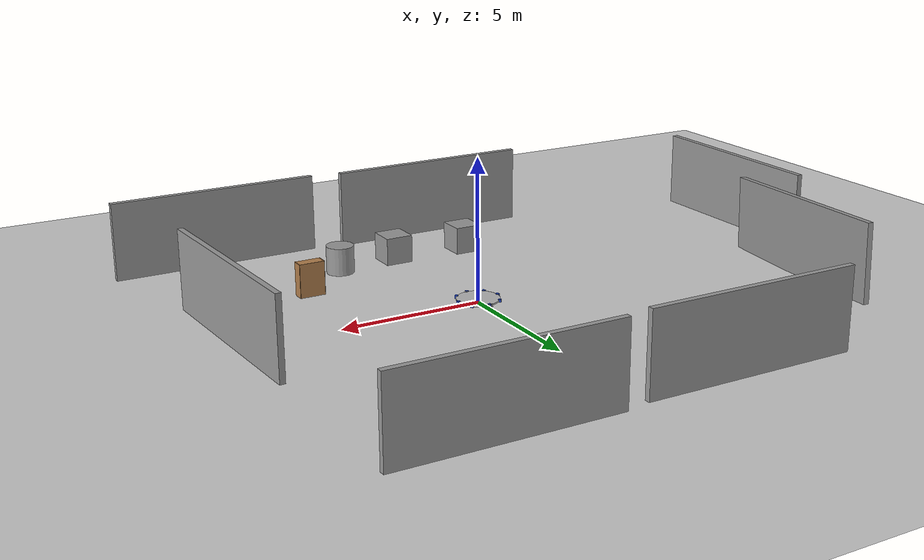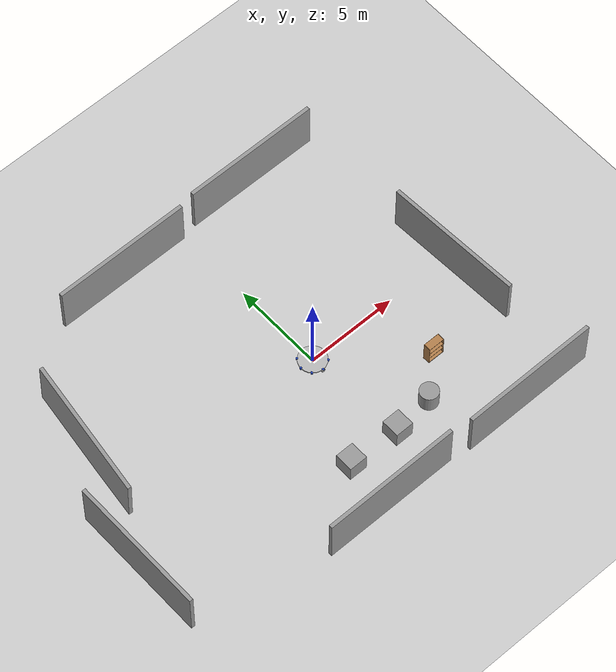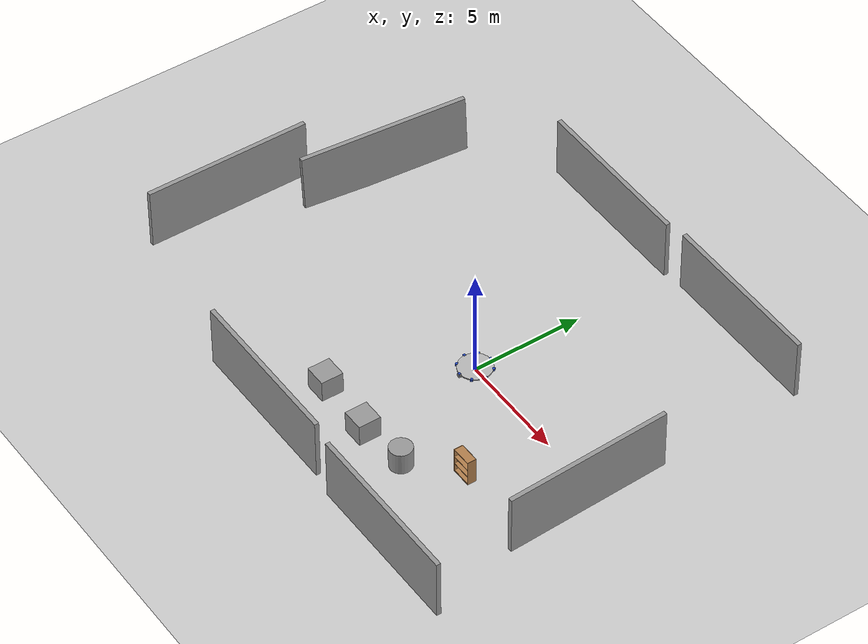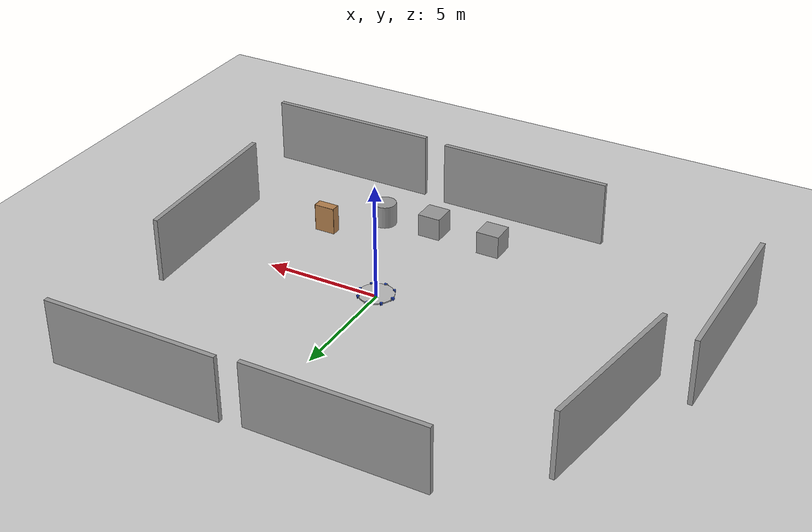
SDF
<sdf version="1.6">
 <world name="default">
  <light name="sun" type="directional">
   <pose>0 0 10 0 -0 0</pose>
   <diffuse>0.8 0.8 0.8 1</diffuse>
   <specular>0.2 0.2 0.2 1</specular>
   <attenuation>
    <range>1000</range>
    <constant>0.9</constant>
    <linear>0.01</linear>
    <quadratic>0.001</quadratic>
   </attenuation>
   <direction>-0.5 0.1 -0.9</direction>
  </light>
  <model name="ground_plane">
   <static>1</static>
   <link name="link">
    <collision name="collision">
     <geometry><plane><normal>0 0 1</normal><size>100 100</size></plane></geometry>
     <surface><friction><ode><mu>100</mu><mu2>50</mu2></ode></friction></surface>
    </collision>
    <visual name="visual">
     <cast_shadows>0</cast_shadows>
     <geometry><plane><normal>0 0 1</normal><size>100 100</size></plane></geometry>
     <material>
      <script><uri>file://media/materials/scripts/gazebo.material</uri><name>Gazebo/Grey</name></script>
     </material>
    </visual>
   </link>
  </model>
  <gravity>0 0 -9.8</gravity>
  <magnetic_field>6e-06 2.3e-05 -4.2e-05</magnetic_field>
  <atmosphere type="adiabatic"/>
  <physics name="default_physics" default="0" type="ode">
   <max_step_size>0.001</max_step_size>
   <real_time_factor>1</real_time_factor>
   <real_time_update_rate>1000</real_time_update_rate>
  </physics>
  <scene><ambient>0.4 0.4 0.4 1</ambient><background>0.7 0.7 0.7 1</background><shadows>1</shadows></scene>
  <spherical_coordinates>
   <surface_model>EARTH_WGS84</surface_model>
   <latitude_deg>0</latitude_deg>
   <longitude_deg>0</longitude_deg>
   <elevation>0</elevation>
   <heading_deg>0</heading_deg>
  </spherical_coordinates>
  <model name="grey_wall">
   <static>1</static>
   <link name="link">
    <pose>0 0 1.4 0 -0 0</pose>
    <collision name="collision"><geometry><box><size>7.5 0.2 2.8</size></box></geometry></collision>
    <visual name="visual">
     <cast_shadows>0</cast_shadows>
     <geometry><box><size>7.5 0.2 2.8</size></box></geometry>
     <material>
      <script>
       <uri>model://grey_wall/materials/scripts</uri>
       <uri>model://grey_wall/materials/textures</uri>
       <name>vrc/grey_wall</name>
      </script>
     </material>
    </visual>
   </link>
   <pose>8.4657 -0.631361 0 0 0 -1.52314</pose>
  </model>
  <model name="robot">
   <link name="base_footprint">
    <inertial>
     <pose>0 -0 0.2 0 -0 0</pose>
     <mass>5.00008</mass>
     <inertia>
      <ixx>2.02832</ixx>
      <ixy>-1.03398e-25</ixy>
      <ixz>0</ixz>
      <iyy>2.87332</iyy>
      <iyz>2.35099e-38</iyz>
      <izz>2.9013</izz>
     </inertia>
    </inertial>
    <collision name="base_footprint_fixed_joint_lump__base_link_collision">
     <pose>0 0 0.2 0 -0 0</pose>
     <geometry><cylinder><length>0.05</length><radius>0.75</radius></cylinder></geometry>
    </collision>
    <collision name="base_footprint_fixed_joint_lump__caster_wheel_back_collision_1">
     <pose>-0.65 0 0.1 0 -0 0</pose>
     <geometry><sphere><radius>0.05</radius></sphere></geometry>
     <surface><friction><ode><mu>0</mu><mu2>0</mu2></ode></friction></surface>
    </collision>
    <collision name="base_footprint_fixed_joint_lump__caster_wheel_front_collision_2">
     <pose>0.65 0 0.1 0 -0 0</pose>
     <geometry><sphere><radius>0.05</radius></sphere></geometry>
     <surface><friction><ode><mu>0</mu><mu2>0</mu2></ode></friction></surface>
    </collision>
    <collision name="base_footprint_fixed_joint_lump__base_sonar_front_collision_3">
     <pose>0.75 0 0.2 0 -0 0</pose>
     <geometry><box><size>0.1 0.1 0.1</size></box></geometry>
    </collision>
    <collision name="base_footprint_fixed_joint_lump__base_sonar_front1_collision_4">
     <pose>-0.75 0 0.2 0 -0 3.14</pose>
     <geometry><box><size>0.1 0.1 0.1</size></box></geometry>
    </collision>
    <collision name="base_footprint_fixed_joint_lump__base_sonar_front2_collision_5">
     <pose>0.53 0.53 0.2 0 -0 0.785</pose>
     <geometry><box><size>0.1 0.1 0.1</size></box></geometry>
    </collision>
    <collision name="base_footprint_fixed_joint_lump__base_sonar_front3_collision_6">
     <pose>0.53 -0.53 0.2 0 0 -0.785</pose>
     <geometry><box><size>0.1 0.1 0.1</size></box></geometry>
    </collision>
    <collision name="base_footprint_fixed_joint_lump__base_sonar_front4_collision_7">
     <pose>-0.53 0.53 0.2 0 -0 2.35</pose>
     <geometry><box><size>0.1 0.1 0.1</size></box></geometry>
    </collision>
    <collision name="base_footprint_fixed_joint_lump__base_sonar_front5_collision_8">
     <pose>-0.53 -0.53 0.2 0 -0 -2.36319</pose>
     <geometry><box><size>0.1 0.1 0.1</size></box></geometry>
    </collision>
    <collision name="base_footprint_fixed_joint_lump__base_sonar_front6_collision_9">
     <pose>0 0.75 0.2 0 -0 1.57</pose>
     <geometry><box><size>0.1 0.1 0.1</size></box></geometry>
    </collision>
    <collision name="base_footprint_fixed_joint_lump__base_sonar_front7_collision_10">
     <pose>0 -0.75 0.2 0 -0 -1.57319</pose>
     <geometry><box><size>0.1 0.1 0.1</size></box></geometry>
    </collision>
    <visual name="base_footprint_visual">
     <geometry><box><size>0.001 0.001 0.001</size></box></geometry>
     <material><script><uri>__default__</uri><name>__default__</name></script></material>
    </visual>
    <visual name="base_footprint_fixed_joint_lump__base_link_visual_1">
     <pose>0 0 0.2 0 -0 0</pose>
     <geometry><cylinder><length>0.05</length><radius>0.75</radius></cylinder></geometry>
     <material><script><uri>__default__</uri><name>__default__</name></script></material>
    </visual>
    <visual name="base_footprint_fixed_joint_lump__caster_wheel_back_visual_2">
     <pose>-0.65 0 0.1 0 -0 0</pose>
     <geometry><sphere><radius>0.05</radius></sphere></geometry>
     <material>
      <script><name>Gazebo/Grey</name><uri>file://media/materials/scripts/gazebo.material</uri></script>
     </material>
    </visual>
    <visual name="base_footprint_fixed_joint_lump__caster_wheel_front_visual_3">
     <pose>0.65 0 0.1 0 -0 0</pose>
     <geometry><sphere><radius>0.05</radius></sphere></geometry>
     <material>
      <script><name>Gazebo/Grey</name><uri>file://media/materials/scripts/gazebo.material</uri></script>
     </material>
    </visual>
    <visual name="base_footprint_fixed_joint_lump__base_sonar_front_visual_4">
     <pose>0.75 0 0.2 0 -0 0</pose>
     <geometry><box><size>0.1 0.1 0.1</size></box></geometry>
     <material>
      <script><name>Gazebo/Blue</name><uri>file://media/materials/scripts/gazebo.material</uri></script>
     </material>
    </visual>
    <visual name="base_footprint_fixed_joint_lump__base_sonar_front1_visual_5">
     <pose>-0.75 0 0.2 0 -0 3.14</pose>
     <geometry><box><size>0.1 0.1 0.1</size></box></geometry>
     <material>
      <script><name>Gazebo/Blue</name><uri>file://media/materials/scripts/gazebo.material</uri></script>
     </material>
    </visual>
    <visual name="base_footprint_fixed_joint_lump__base_sonar_front2_visual_6">
     <pose>0.53 0.53 0.2 0 -0 0.785</pose>
     <geometry><box><size>0.1 0.1 0.1</size></box></geometry>
     <material>
      <script><name>Gazebo/Blue</name><uri>file://media/materials/scripts/gazebo.material</uri></script>
     </material>
    </visual>
    <visual name="base_footprint_fixed_joint_lump__base_sonar_front3_visual_7">
     <pose>0.53 -0.53 0.2 0 0 -0.785</pose>
     <geometry><box><size>0.1 0.1 0.1</size></box></geometry>
     <material>
      <script><name>Gazebo/Blue</name><uri>file://media/materials/scripts/gazebo.material</uri></script>
     </material>
    </visual>
    <visual name="base_footprint_fixed_joint_lump__base_sonar_front4_visual_8">
     <pose>-0.53 0.53 0.2 0 -0 2.35</pose>
     <geometry><box><size>0.1 0.1 0.1</size></box></geometry>
     <material>
      <script><name>Gazebo/Blue</name><uri>file://media/materials/scripts/gazebo.material</uri></script>
     </material>
    </visual>
    <visual name="base_footprint_fixed_joint_lump__base_sonar_front5_visual_9">
     <pose>-0.53 -0.53 0.2 0 -0 -2.36319</pose>
     <geometry><box><size>0.1 0.1 0.1</size></box></geometry>
     <material>
      <script><name>Gazebo/Blue</name><uri>file://media/materials/scripts/gazebo.material</uri></script>
     </material>
    </visual>
    <visual name="base_footprint_fixed_joint_lump__base_sonar_front6_visual_10">
     <pose>0 0.75 0.2 0 -0 1.57</pose>
     <geometry><box><size>0.1 0.1 0.1</size></box></geometry>
     <material>
      <script><name>Gazebo/Blue</name><uri>file://media/materials/scripts/gazebo.material</uri></script>
     </material>
    </visual>
    <visual name="base_footprint_fixed_joint_lump__base_sonar_front7_visual_11">
     <pose>0 -0.75 0.2 0 -0 -1.57319</pose>
     <geometry><box><size>0.1 0.1 0.1</size></box></geometry>
     <material>
      <script><name>Gazebo/Blue</name><uri>file://media/materials/scripts/gazebo.material</uri></script>
     </material>
    </visual>
    <sensor name="head_hokuyo_sensor" type="ray">
     <visualize>1</visualize>
     <update_rate>40</update_rate>
     <ray>
      <scan>
       <horizontal>
        <samples>720</samples>
        <resolution>1</resolution>
        <min_angle>-0.1</min_angle>
        <max_angle>0.1</max_angle>
       </horizontal>
       <vertical><samples>1</samples><min_angle>0</min_angle><max_angle>0</max_angle></vertical>
      </scan>
      <range><min>0.1</min><max>10</max><resolution>0.001</resolution></range>
     </ray>
     <plugin name="gazebo_ros_head_hokuyo_controller" filename="libgazebo_ros_range.so">
      <topicName>/scan</topicName>
      <frameName>base_sonar_front</frameName>
      <robotNamespace>/</robotNamespace>
     </plugin>
     <pose>0.75 0 0.2 0 -0 0</pose>
    </sensor>
    <sensor name="head_hokuyo_sensor" type="ray">
     <visualize>1</visualize>
     <update_rate>40</update_rate>
     <ray>
      <scan>
       <horizontal>
        <samples>720</samples>
        <resolution>1</resolution>
        <min_angle>-0.1</min_angle>
        <max_angle>0.1</max_angle>
       </horizontal>
       <vertical><samples>1</samples><min_angle>0</min_angle><max_angle>0</max_angle></vertical>
      </scan>
      <range><min>0.1</min><max>10</max><resolution>0.001</resolution></range>
     </ray>
     <plugin name="gazebo_ros_head_hokuyo_controller" filename="libgazebo_ros_range.so">
      <topicName>/scan1</topicName>
      <frameName>base_sonar_front1</frameName>
      <robotNamespace>/</robotNamespace>
     </plugin>
     <pose>-0.75 0 0.2 0 -0 3.14</pose>
    </sensor>
    <sensor name="head_hokuyo_sensor" type="ray">
     <visualize>1</visualize>
     <update_rate>40</update_rate>
     <ray>
      <scan>
       <horizontal>
        <samples>720</samples>
        <resolution>1</resolution>
        <min_angle>-0.1</min_angle>
        <max_angle>0.1</max_angle>
       </horizontal>
       <vertical><samples>1</samples><min_angle>0</min_angle><max_angle>0</max_angle></vertical>
      </scan>
      <range><min>0.1</min><max>10</max><resolution>0.001</resolution></range>
     </ray>
     <plugin name="gazebo_ros_head_hokuyo_controller" filename="libgazebo_ros_range.so">
      <topicName>/scan2</topicName>
      <frameName>base_sonar_front2</frameName>
      <robotNamespace>/</robotNamespace>
     </plugin>
     <pose>0.53 0.53 0.2 0 -0 0.785</pose>
    </sensor>
    <sensor name="head_hokuyo_sensor" type="ray">
     <visualize>1</visualize>
     <update_rate>40</update_rate>
     <ray>
      <scan>
       <horizontal>
        <samples>720</samples>
        <resolution>1</resolution>
        <min_angle>-0.1</min_angle>
        <max_angle>0.1</max_angle>
       </horizontal>
       <vertical><samples>1</samples><min_angle>0</min_angle><max_angle>0</max_angle></vertical>
      </scan>
      <range><min>0.1</min><max>10</max><resolution>0.001</resolution></range>
     </ray>
     <plugin name="gazebo_ros_head_hokuyo_controller" filename="libgazebo_ros_range.so">
      <topicName>/scan3</topicName>
      <frameName>base_sonar_front3</frameName>
      <robotNamespace>/</robotNamespace>
     </plugin>
     <pose>0.53 -0.53 0.2 0 0 -0.785</pose>
    </sensor>
    <sensor name="head_hokuyo_sensor" type="ray">
     <visualize>1</visualize>
     <update_rate>40</update_rate>
     <ray>
      <scan>
       <horizontal>
        <samples>720</samples>
        <resolution>1</resolution>
        <min_angle>-0.1</min_angle>
        <max_angle>0.1</max_angle>
       </horizontal>
       <vertical><samples>1</samples><min_angle>0</min_angle><max_angle>0</max_angle></vertical>
      </scan>
      <range><min>0.1</min><max>10</max><resolution>0.001</resolution></range>
     </ray>
     <plugin name="gazebo_ros_head_hokuyo_controller" filename="libgazebo_ros_range.so">
      <topicName>/scan4</topicName>
      <frameName>base_sonar_front4</frameName>
      <robotNamespace>/</robotNamespace>
     </plugin>
     <pose>-0.53 0.53 0.2 0 -0 2.35</pose>
    </sensor>
    <sensor name="head_hokuyo_sensor" type="ray">
     <visualize>1</visualize>
     <update_rate>40</update_rate>
     <ray>
      <scan>
       <horizontal>
        <samples>720</samples>
        <resolution>1</resolution>
        <min_angle>-0.1</min_angle>
        <max_angle>0.1</max_angle>
       </horizontal>
       <vertical><samples>1</samples><min_angle>0</min_angle><max_angle>0</max_angle></vertical>
      </scan>
      <range><min>0.1</min><max>10</max><resolution>0.001</resolution></range>
     </ray>
     <plugin name="gazebo_ros_head_hokuyo_controller" filename="libgazebo_ros_range.so">
      <topicName>/scan5</topicName>
      <frameName>base_sonar_front5</frameName>
      <robotNamespace>/</robotNamespace>
     </plugin>
     <pose>-0.53 -0.53 0.2 0 -0 -2.36319</pose>
    </sensor>
    <sensor name="head_hokuyo_sensor" type="ray">
     <visualize>1</visualize>
     <update_rate>40</update_rate>
     <ray>
      <scan>
       <horizontal>
        <samples>720</samples>
        <resolution>1</resolution>
        <min_angle>-0.1</min_angle>
        <max_angle>0.1</max_angle>
       </horizontal>
       <vertical><samples>1</samples><min_angle>0</min_angle><max_angle>0</max_angle></vertical>
      </scan>
      <range><min>0.1</min><max>10</max><resolution>0.001</resolution></range>
     </ray>
     <plugin name="gazebo_ros_head_hokuyo_controller" filename="libgazebo_ros_range.so">
      <topicName>/scan6</topicName>
      <frameName>base_sonar_front6</frameName>
      <robotNamespace>/</robotNamespace>
     </plugin>
     <pose>0 0.75 0.2 0 -0 1.57</pose>
    </sensor>
    <sensor name="head_hokuyo_sensor" type="ray">
     <visualize>1</visualize>
     <update_rate>40</update_rate>
     <ray>
      <scan>
       <horizontal>
        <samples>720</samples>
        <resolution>1</resolution>
        <min_angle>-0.1</min_angle>
        <max_angle>0.1</max_angle>
       </horizontal>
       <vertical><samples>1</samples><min_angle>0</min_angle><max_angle>0</max_angle></vertical>
      </scan>
      <range><min>0.1</min><max>10</max><resolution>0.001</resolution></range>
     </ray>
     <plugin name="gazebo_ros_head_hokuyo_controller" filename="libgazebo_ros_range.so">
      <topicName>/scan7</topicName>
      <frameName>base_sonar_front7</frameName>
      <robotNamespace>/</robotNamespace>
     </plugin>
     <pose>0 -0.75 0.2 0 -0 -1.57319</pose>
    </sensor>
   </link>
   <link name="left_wheel">
    <pose>0 -0.75 0.15 0 -0 0</pose>
    <inertial>
     <mass>1</mass>
     <inertia><ixx>1</ixx><ixy>0</ixy><ixz>0</ixz><iyy>1</iyy><iyz>0</iyz><izz>1</izz></inertia>
    </inertial>
    <collision name="left_wheel_collision">
     <pose>0 0 0 1.5708 -0 0</pose>
     <geometry><cylinder><length>0.1</length><radius>0.1</radius></cylinder></geometry>
     <surface>
      <contact><ode><kp>1e+07</kp><kd>1</kd></ode></contact>
      <friction><ode><mu>200</mu><mu2>100</mu2></ode></friction>
     </surface>
    </collision>
    <visual name="left_wheel_visual">
     <pose>0 0 0 1.5708 -0 0</pose>
     <geometry><cylinder><length>0.1</length><radius>0.1</radius></cylinder></geometry>
     <material>
      <script><name>Gazebo/Grey</name><uri>file://media/materials/scripts/gazebo.material</uri></script>
     </material>
    </visual>
   </link>
   <joint name="left_wheel_joint" type="revolute">
    <child>left_wheel</child>
    <parent>base_footprint</parent>
    <axis>
     <xyz>0 1 0</xyz>
     <limit><lower>-1e+16</lower><upper>1e+16</upper></limit>
     <dynamics><spring_reference>0</spring_reference><spring_stiffness>0</spring_stiffness></dynamics>
     <use_parent_model_frame>1</use_parent_model_frame>
    </axis>
   </joint>
   <link name="right_wheel">
    <pose>0 0.75 0.15 0 -0 0</pose>
    <inertial>
     <mass>1</mass>
     <inertia><ixx>1</ixx><ixy>0</ixy><ixz>0</ixz><iyy>1</iyy><iyz>0</iyz><izz>1</izz></inertia>
    </inertial>
    <collision name="right_wheel_collision">
     <pose>0 0 0 1.5708 -0 0</pose>
     <geometry><cylinder><length>0.1</length><radius>0.1</radius></cylinder></geometry>
     <surface>
      <contact><ode><kp>1e+07</kp><kd>1</kd></ode></contact>
      <friction><ode><mu>200</mu><mu2>100</mu2></ode></friction>
     </surface>
    </collision>
    <visual name="right_wheel_visual">
     <pose>0 0 0 1.5708 -0 0</pose>
     <geometry><cylinder><length>0.1</length><radius>0.1</radius></cylinder></geometry>
     <material>
      <script><name>Gazebo/Grey</name><uri>file://media/materials/scripts/gazebo.material</uri></script>
     </material>
    </visual>
   </link>
   <joint name="right_wheel_joint" type="revolute">
    <child>right_wheel</child>
    <parent>base_footprint</parent>
    <axis>
     <xyz>0 1 0</xyz>
     <limit><lower>-1e+16</lower><upper>1e+16</upper></limit>
     <dynamics><spring_reference>0</spring_reference><spring_stiffness>0</spring_stiffness></dynamics>
     <use_parent_model_frame>1</use_parent_model_frame>
    </axis>
   </joint>
   <plugin name="differential_drive_controller_front" filename="libgazebo_ros_diff_drive.so">
    <rosDebugLevel>Debug</rosDebugLevel>
    <publishWheelTF>false</publishWheelTF>
    <robotNamespace>/</robotNamespace>
    <publishTf>1</publishTf>
    <publishWheelJointState>false</publishWheelJointState>
    <alwaysOn>true</alwaysOn>
    <updateRate>100.0</updateRate>
    <leftJoint>left_wheel_joint</leftJoint>
    <rightJoint>right_wheel_joint</rightJoint>
    <wheelSeparation>1.5</wheelSeparation>
    <wheelDiameter>0.4</wheelDiameter>
    <broadcastTF>1</broadcastTF>
    <wheelTorque>30</wheelTorque>
    <wheelAcceleration>1.8</wheelAcceleration>
    <commandTopic>cmd_vel</commandTopic>
    <odometryFrame>odom</odometryFrame>
    <odometryTopic>odom</odometryTopic>
    <robotBaseFrame>base_footprint</robotBaseFrame>
   </plugin>
   <static>0</static>
   <plugin name="gazebo_ros_control" filename="libgazebo_ros_control.so">
    <robotNamespace>/</robotNamespace>
   </plugin>
   <pose>4e-06 2e-06 -0.05 0 -0 1e-06</pose>
  </model>
  <model name="bookshelf">
   <static>1</static>
   <link name="link">
    <inertial><mass>1</mass></inertial>
    <collision name="back">
     <pose>0 0.005 0.6 0 -0 0</pose>
     <geometry><box><size>0.9 0.01 1.2</size></box></geometry>
    </collision>
    <visual name="visual1">
     <pose>0 0.005 0.6 0 -0 0</pose>
     <geometry><box><size>0.9 0.01 1.2</size></box></geometry>
     <material>
      <script><uri>file://media/materials/scripts/gazebo.material</uri><name>Gazebo/Wood</name></script>
     </material>
    </visual>
    <collision name="left_side">
     <pose>0.45 -0.195 0.6 0 -0 0</pose>
     <geometry><box><size>0.02 0.4 1.2</size></box></geometry>
    </collision>
    <visual name="visual2">
     <pose>0.45 -0.195 0.6 0 -0 0</pose>
     <geometry><box><size>0.02 0.4 1.2</size></box></geometry>
     <material>
      <script><uri>file://media/materials/scripts/gazebo.material</uri><name>Gazebo/Wood</name></script>
     </material>
    </visual>
    <collision name="right_side">
     <pose>-0.45 -0.195 0.6 0 -0 0</pose>
     <geometry><box><size>0.02 0.4 1.2</size></box></geometry>
    </collision>
    <visual name="visual3">
     <pose>-0.45 -0.195 0.6 0 -0 0</pose>
     <geometry><box><size>0.02 0.4 1.2</size></box></geometry>
     <material>
      <script><uri>file://media/materials/scripts/gazebo.material</uri><name>Gazebo/Wood</name></script>
     </material>
    </visual>
    <collision name="bottom">
     <pose>0 -0.195 0.03 0 -0 0</pose>
     <geometry><box><size>0.88 0.4 0.06</size></box></geometry>
    </collision>
    <visual name="visual4">
     <pose>0 -0.195 0.03 0 -0 0</pose>
     <geometry><box><size>0.88 0.4 0.06</size></box></geometry>
     <material>
      <script><uri>file://media/materials/scripts/gazebo.material</uri><name>Gazebo/Wood</name></script>
     </material>
    </visual>
    <collision name="top">
     <pose>0 -0.195 1.19 0 -0 0</pose>
     <geometry><box><size>0.88 0.4 0.02</size></box></geometry>
    </collision>
    <visual name="visual5">
     <pose>0 -0.195 1.19 0 -0 0</pose>
     <geometry><box><size>0.88 0.4 0.02</size></box></geometry>
     <material>
      <script><uri>file://media/materials/scripts/gazebo.material</uri><name>Gazebo/Wood</name></script>
     </material>
    </visual>
    <collision name="low_shelf">
     <pose>0 -0.195 0.43 0 -0 0</pose>
     <geometry><box><size>0.88 0.4 0.02</size></box></geometry>
    </collision>
    <visual name="visual6">
     <pose>0 -0.195 0.43 0 -0 0</pose>
     <geometry><box><size>0.88 0.4 0.02</size></box></geometry>
     <material>
      <script><uri>file://media/materials/scripts/gazebo.material</uri><name>Gazebo/Wood</name></script>
     </material>
    </visual>
    <collision name="high_shelf">
     <pose>0 -0.195 0.8 0 -0 0</pose>
     <geometry><box><size>0.88 0.4 0.02</size></box></geometry>
    </collision>
    <visual name="visual7">
     <pose>0 -0.195 0.8 0 -0 0</pose>
     <geometry><box><size>0.88 0.4 0.02</size></box></geometry>
     <material>
      <script><uri>file://media/materials/scripts/gazebo.material</uri><name>Gazebo/Wood</name></script>
     </material>
    </visual>
   </link>
   <pose>4.51134 -3.38751 0 0 -0 0</pose>
  </model>
  <model name="unit_box_0">
   <pose>-2.44962 -5.44509 0.499995 0 1e-05 0</pose>
   <link name="link">
    <inertial>
     <mass>1</mass>
     <inertia>
      <ixx>0.166667</ixx>
      <ixy>0</ixy>
      <ixz>0</ixz>
      <iyy>0.166667</iyy>
      <iyz>0</iyz>
      <izz>0.166667</izz>
     </inertia>
    </inertial>
    <collision name="collision"><geometry><box><size>1 1 1</size></box></geometry></collision>
    <visual name="visual">
     <geometry><box><size>1 1 1</size></box></geometry>
     <material>
      <script><name>Gazebo/Grey</name><uri>file://media/materials/scripts/gazebo.material</uri></script>
     </material>
    </visual>
   </link>
  </model>
  <model name="unit_cylinder_0">
   <pose>2.62536 -5.29131 0.499998 3e-06 -3e-06 0</pose>
   <link name="link">
    <inertial>
     <mass>1</mass>
     <inertia><ixx>0.145833</ixx><ixy>0</ixy><ixz>0</ixz><iyy>0.145833</iyy><iyz>0</iyz><izz>0.125</izz></inertia>
    </inertial>
    <collision name="collision">
     <geometry><cylinder><radius>0.5</radius><length>1</length></cylinder></geometry>
    </collision>
    <visual name="visual">
     <geometry><cylinder><radius>0.5</radius><length>1</length></cylinder></geometry>
     <material>
      <script><name>Gazebo/Grey</name><uri>file://media/materials/scripts/gazebo.material</uri></script>
     </material>
    </visual>
   </link>
  </model>
  <model name="unit_box_1">
   <pose>0.370223 -5.55528 0.499995 0 1e-05 0</pose>
   <link name="link">
    <inertial>
     <mass>1</mass>
     <inertia>
      <ixx>0.166667</ixx>
      <ixy>0</ixy>
      <ixz>0</ixz>
      <iyy>0.166667</iyy>
      <iyz>0</iyz>
      <izz>0.166667</izz>
     </inertia>
    </inertial>
    <collision name="collision"><geometry><box><size>1 1 1</size></box></geometry></collision>
    <visual name="visual">
     <geometry><box><size>1 1 1</size></box></geometry>
     <material>
      <script><name>Gazebo/Grey</name><uri>file://media/materials/scripts/gazebo.material</uri></script>
     </material>
    </visual>
   </link>
  </model>
  <model name="grey_wall_0">
   <static>1</static>
   <link name="link">
    <pose>0 0 1.4 0 -0 0</pose>
    <collision name="collision"><geometry><box><size>7.5 0.2 2.8</size></box></geometry></collision>
    <visual name="visual">
     <cast_shadows>0</cast_shadows>
     <geometry><box><size>7.5 0.2 2.8</size></box></geometry>
     <material>
      <script>
       <uri>model://grey_wall/materials/scripts</uri>
       <uri>model://grey_wall/materials/textures</uri>
       <name>vrc/grey_wall</name>
      </script>
     </material>
    </visual>
   </link>
   <pose>-2.50635 -8.20129 0 0 -0 0</pose>
  </model>
  <model name="grey_wall_1">
   <static>1</static>
   <link name="link">
    <pose>0 0 1.4 0 -0 0</pose>
    <collision name="collision"><geometry><box><size>7.5 0.2 2.8</size></box></geometry></collision>
    <visual name="visual">
     <cast_shadows>0</cast_shadows>
     <geometry><box><size>7.5 0.2 2.8</size></box></geometry>
     <material>
      <script>
       <uri>model://grey_wall/materials/scripts</uri>
       <uri>model://grey_wall/materials/textures</uri>
       <name>vrc/grey_wall</name>
      </script>
     </material>
    </visual>
   </link>
   <pose>6.05093 -8.40778 0 0 -0 0</pose>
  </model>
  <model name="grey_wall_2">
   <static>1</static>
   <link name="link">
    <pose>0 0 1.4 0 -0 0</pose>
    <collision name="collision"><geometry><box><size>7.5 0.2 2.8</size></box></geometry></collision>
    <visual name="visual">
     <cast_shadows>0</cast_shadows>
     <geometry><box><size>7.5 0.2 2.8</size></box></geometry>
     <material>
      <script>
       <uri>model://grey_wall/materials/scripts</uri>
       <uri>model://grey_wall/materials/textures</uri>
       <name>vrc/grey_wall</name>
      </script>
     </material>
    </visual>
   </link>
   <pose>-11.2574 3.27041 0 0.004632 -0.037576 1.44812</pose>
  </model>
  <model name="grey_wall_3">
   <static>1</static>
   <link name="link">
    <pose>0 0 1.4 0 -0 0</pose>
    <collision name="collision"><geometry><box><size>7.5 0.2 2.8</size></box></geometry></collision>
    <visual name="visual">
     <cast_shadows>0</cast_shadows>
     <geometry><box><size>7.5 0.2 2.8</size></box></geometry>
     <material>
      <script>
       <uri>model://grey_wall/materials/scripts</uri>
       <uri>model://grey_wall/materials/textures</uri>
       <name>vrc/grey_wall</name>
      </script>
     </material>
    </visual>
   </link>
   <pose>-13.3654 -3.03718 0 0 -0 1.57372</pose>
  </model>
  <model name="grey_wall_4">
   <static>1</static>
   <link name="link">
    <pose>0 0 1.4 0 -0 0</pose>
    <collision name="collision"><geometry><box><size>7.5 0.2 2.8</size></box></geometry></collision>
    <visual name="visual">
     <cast_shadows>0</cast_shadows>
     <geometry><box><size>7.5 0.2 2.8</size></box></geometry>
     <material>
      <script>
       <uri>model://grey_wall/materials/scripts</uri>
       <uri>model://grey_wall/materials/textures</uri>
       <name>vrc/grey_wall</name>
      </script>
     </material>
    </visual>
   </link>
   <pose>-3.80102 9.39947 0 0 -0 0</pose>
  </model>
  <model name="grey_wall_5">
   <static>1</static>
   <link name="link">
    <pose>0 0 1.4 0 -0 0</pose>
    <collision name="collision"><geometry><box><size>7.5 0.2 2.8</size></box></geometry></collision>
    <visual name="visual">
     <cast_shadows>0</cast_shadows>
     <geometry><box><size>7.5 0.2 2.8</size></box></geometry>
     <material>
      <script>
       <uri>model://grey_wall/materials/scripts</uri>
       <uri>model://grey_wall/materials/textures</uri>
       <name>vrc/grey_wall</name>
      </script>
     </material>
    </visual>
   </link>
   <pose>4.54271 9.58305 0 0 -0 0</pose>
  </model>
 </world>
</sdf>
